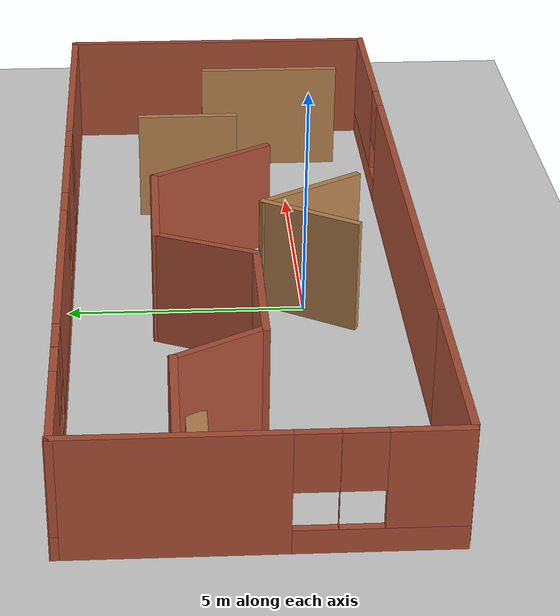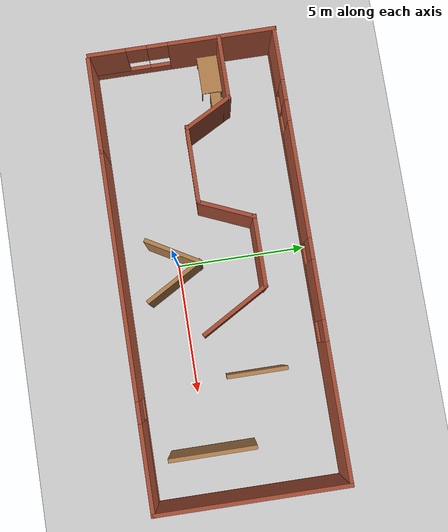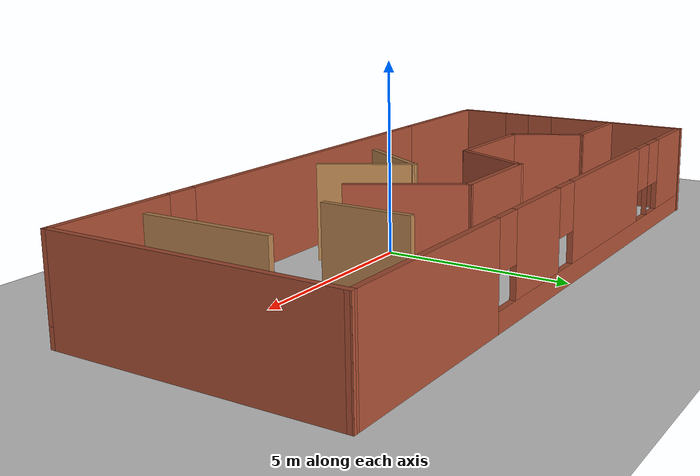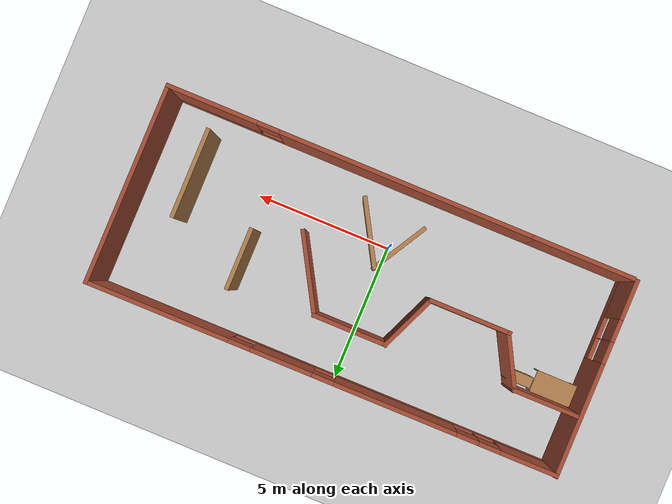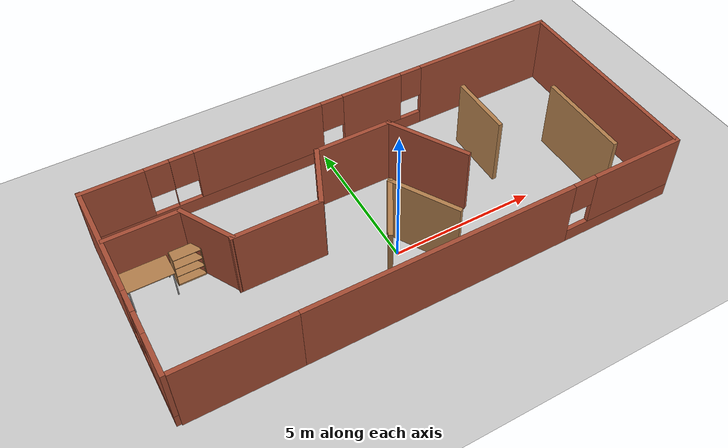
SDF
<sdf version="1.7">
 <world name="default">
  <light name="sun" type="directional">
   <pose>0 0 10 0 -0 0</pose>
   <diffuse>0.8 0.8 0.8 1</diffuse>
   <specular>0.2 0.2 0.2 1</specular>
   <attenuation>
    <range>1000</range>
    <constant>0.9</constant>
    <linear>0.01</linear>
    <quadratic>0.001</quadratic>
   </attenuation>
   <direction>-0.5 0.1 -0.9</direction>
   <spot><inner_angle>0</inner_angle><outer_angle>0</outer_angle><falloff>0</falloff></spot>
  </light>
  <model name="ground_plane">
   <static>1</static>
   <link name="link">
    <collision name="collision">
     <geometry><plane><normal>0 0 1</normal><size>100 100</size></plane></geometry>
     <surface>
      <contact><collide_bitmask>65535</collide_bitmask></contact>
      <friction><ode><mu>100</mu><mu2>50</mu2></ode></friction>
     </surface>
    </collision>
    <visual name="visual">
     <cast_shadows>0</cast_shadows>
     <geometry><plane><normal>0 0 1</normal><size>100 100</size></plane></geometry>
     <material>
      <script><uri>file://media/materials/scripts/gazebo.material</uri><name>Gazebo/Grey</name></script>
     </material>
    </visual>
   </link>
  </model>
  <gravity>0 0 -9.8</gravity>
  <magnetic_field>6e-06 2.3e-05 -4.2e-05</magnetic_field>
  <atmosphere type="adiabatic"/>
  <physics type="ode">
   <max_step_size>0.001</max_step_size>
   <real_time_factor>1</real_time_factor>
   <real_time_update_rate>1000</real_time_update_rate>
  </physics>
  <scene><ambient>0.4 0.4 0.4 1</ambient><background>0.7 0.7 0.7 1</background><shadows>1</shadows></scene>
  <spherical_coordinates>
   <surface_model>EARTH_WGS84</surface_model>
   <latitude_deg>0</latitude_deg>
   <longitude_deg>0</longitude_deg>
   <elevation>0</elevation>
   <heading_deg>0</heading_deg>
  </spherical_coordinates>
  <model name="map3">
   <pose>0.421785 1.42963 0 0 -0 0</pose>
   <link name="Wall_10">
    <collision name="Wall_10_Collision">
     <geometry><box><size>2.07581 0.15 2.5</size></box></geometry>
     <pose>0 0 1.25 0 -0 0</pose>
    </collision>
    <visual name="Wall_10_Visual">
     <pose>0 0 1.25 0 -0 0</pose>
     <geometry><box><size>2.07581 0.15 2.5</size></box></geometry>
     <material>
      <script><uri>file://media/materials/scripts/gazebo.material</uri><name>Gazebo/Bricks</name></script>
      <ambient>1 1 1 1</ambient>
     </material>
     <meta><layer>0</layer></meta>
    </visual>
    <pose>-5.69652 0.581731 0 0 -0 -1.07461</pose>
   </link>
   <link name="Wall_11">
    <collision name="Wall_11_Collision">
     <geometry><box><size>3 0.15 2.5</size></box></geometry>
     <pose>0 0 1.25 0 -0 0</pose>
    </collision>
    <visual name="Wall_11_Visual">
     <pose>0 0 1.25 0 -0 0</pose>
     <geometry><box><size>3 0.15 2.5</size></box></geometry>
     <material>
      <script><uri>file://media/materials/scripts/gazebo.material</uri><name>Gazebo/Bricks</name></script>
      <ambient>1 1 1 1</ambient>
     </material>
     <meta><layer>0</layer></meta>
    </visual>
    <pose>-3.84286 -0.284891 0 0 -0 0</pose>
   </link>
   <link name="Wall_12">
    <collision name="Wall_12_Collision">
     <geometry><box><size>2.26463 0.15 2.5</size></box></geometry>
     <pose>0 0 1.25 0 -0 0</pose>
    </collision>
    <visual name="Wall_12_Visual">
     <pose>0 0 1.25 0 -0 0</pose>
     <geometry><box><size>2.26463 0.15 2.5</size></box></geometry>
     <material>
      <script><uri>file://media/materials/scripts/gazebo.material</uri><name>Gazebo/Bricks</name></script>
      <ambient>1 1 1 1</ambient>
     </material>
     <meta><layer>0</layer></meta>
    </visual>
    <pose>-1.97152 0.706731 0 0 -0 1.16581</pose>
   </link>
   <link name="Wall_13">
    <collision name="Wall_13_Collision">
     <geometry><box><size>2.75 0.15 2.5</size></box></geometry>
     <pose>0 0 1.25 0 -0 0</pose>
    </collision>
    <visual name="Wall_13_Visual">
     <pose>0 0 1.25 0 -0 0</pose>
     <geometry><box><size>2.75 0.15 2.5</size></box></geometry>
     <material>
      <script><uri>file://media/materials/scripts/gazebo.material</uri><name>Gazebo/Bricks</name></script>
      <ambient>1 1 1 1</ambient>
     </material>
     <meta><layer>0</layer></meta>
    </visual>
    <pose>-0.254932 1.67851 0 0 -0 0</pose>
   </link>
   <link name="Wall_14">
    <collision name="Wall_14_Collision">
     <geometry><box><size>3 0.15 2.5</size></box></geometry>
     <pose>0 0 1.25 0 -0 0</pose>
    </collision>
    <visual name="Wall_14_Visual">
     <pose>0 0 1.25 0 -0 0</pose>
     <geometry><box><size>3 0.15 2.5</size></box></geometry>
     <material>
      <script><uri>file://media/materials/scripts/gazebo.material</uri><name>Gazebo/Bricks</name></script>
      <ambient>1 1 1 1</ambient>
     </material>
     <meta><layer>0</layer></meta>
    </visual>
    <pose>1.75757 0.444429 0 0 -0 -1.0472</pose>
   </link>
   <link name="Wall_16">
    <collision name="Wall_16_Collision">
     <geometry><box><size>3.75 0.15 2.5</size></box></geometry>
     <pose>0 0 1.25 0 -0 0</pose>
    </collision>
    <visual name="Wall_16_Visual">
     <pose>0 0 1.25 0 -0 0</pose>
     <geometry><box><size>3.75 0.15 2.5</size></box></geometry>
     <material>
      <script><uri>file://media/materials/scripts/gazebo.material</uri><name>Gazebo/Bricks</name></script>
      <ambient>1 1 1 1</ambient>
     </material>
     <meta><layer>0</layer></meta>
    </visual>
    <pose>-6.61312 -3.57791 0 0 -0 3.14159</pose>
   </link>
   <link name="Wall_18">
    <collision name="Wall_18_Collision">
     <geometry><box><size>2.5 0.15 2.5</size></box></geometry>
     <pose>0 0 1.25 0 -0 0</pose>
    </collision>
    <visual name="Wall_18_Visual">
     <pose>0 0 1.25 0 -0 0</pose>
     <geometry><box><size>2.5 0.15 2.5</size></box></geometry>
     <material>
      <script><uri>file://media/materials/scripts/gazebo.material</uri><name>Gazebo/Wood</name></script>
      <ambient>1 1 1 1</ambient>
     </material>
     <meta><layer>0</layer></meta>
    </visual>
    <pose>0.375797 -1.60598 0 0 -0 2.0944</pose>
   </link>
   <link name="Wall_19">
    <collision name="Wall_19_Collision">
     <geometry><box><size>2.25 0.15 2.5</size></box></geometry>
     <pose>0 0 1.25 0 -0 0</pose>
    </collision>
    <visual name="Wall_19_Visual">
     <pose>0 0 1.25 0 -0 0</pose>
     <geometry><box><size>2.25 0.15 2.5</size></box></geometry>
     <material>
      <script><uri>file://media/materials/scripts/gazebo.material</uri><name>Gazebo/Wood</name></script>
      <ambient>1 1 1 1</ambient>
     </material>
     <meta><layer>0</layer></meta>
    </visual>
    <pose>-0.736703 -1.49772 0 0 -0 -2.0944</pose>
   </link>
   <link name="Wall_2">
    <pose>1.86188 -3.57791 0 0 -0 0</pose>
    <visual name="Wall_2_Visual_0">
     <pose>-2.06534 0 1.25 0 -0 0</pose>
     <geometry><box><size>9.36932 0.15 2.5</size></box></geometry>
     <material>
      <script><uri>file://media/materials/scripts/gazebo.material</uri><name>Gazebo/Bricks</name></script>
      <ambient>1 1 1 1</ambient>
     </material>
     <meta><layer>0</layer></meta>
    </visual>
    <collision name="Wall_2_Collision_0">
     <geometry><box><size>9.36932 0.15 2.5</size></box></geometry>
     <pose>-2.06534 0 1.25 0 -0 0</pose>
    </collision>
    <visual name="Wall_2_Visual_1">
     <pose>4.68466 0 0.25 0 -0 0</pose>
     <geometry><box><size>4.13068 0.15 0.5</size></box></geometry>
     <material>
      <script><uri>file://media/materials/scripts/gazebo.material</uri><name>Gazebo/Bricks</name></script>
      <ambient>1 1 1 1</ambient>
     </material>
     <meta><layer>0</layer></meta>
    </visual>
    <collision name="Wall_2_Collision_1">
     <geometry><box><size>4.13068 0.15 0.5</size></box></geometry>
     <pose>4.68466 0 0.25 0 -0 0</pose>
    </collision>
    <visual name="Wall_2_Visual_2">
     <pose>5.08466 0 1.5 0 -0 0</pose>
     <geometry><box><size>3.33068 0.15 2</size></box></geometry>
     <material>
      <script><uri>file://media/materials/scripts/gazebo.material</uri><name>Gazebo/Bricks</name></script>
      <ambient>1 1 1 1</ambient>
     </material>
     <meta><layer>0</layer></meta>
    </visual>
    <collision name="Wall_2_Collision_2">
     <geometry><box><size>3.33068 0.15 2</size></box></geometry>
     <pose>5.08466 0 1.5 0 -0 0</pose>
    </collision>
    <visual name="Wall_2_Visual_3">
     <pose>3.01932 0 1.9 0 -0 0</pose>
     <geometry><box><size>0.8 0.15 1.2</size></box></geometry>
     <material>
      <script><uri>file://media/materials/scripts/gazebo.material</uri><name>Gazebo/Bricks</name></script>
      <ambient>1 1 1 1</ambient>
     </material>
     <meta><layer>0</layer></meta>
    </visual>
    <collision name="Wall_2_Collision_3">
     <geometry><box><size>0.8 0.15 1.2</size></box></geometry>
     <pose>3.01932 0 1.9 0 -0 0</pose>
    </collision>
   </link>
   <link name="Wall_21">
    <collision name="Wall_21_Collision">
     <geometry><box><size>2.25 0.15 2.5</size></box></geometry>
     <pose>0 0 1.25 0 -0 0</pose>
    </collision>
    <visual name="Wall_21_Visual">
     <pose>0 0 1.25 0 -0 0</pose>
     <geometry><box><size>2.25 0.15 2.5</size></box></geometry>
     <material>
      <script><uri>file://media/materials/scripts/gazebo.material</uri><name>Gazebo/Wood</name></script>
      <ambient>1 1 1 1</ambient>
     </material>
     <meta><layer>0</layer></meta>
    </visual>
    <pose>4.10754 0.889067 0 0 -0 -1.5708</pose>
   </link>
   <link name="Wall_23">
    <collision name="Wall_23_Collision">
     <geometry><box><size>3.25 0.15 2.5</size></box></geometry>
     <pose>0 0 1.25 0 -0 0</pose>
    </collision>
    <visual name="Wall_23_Visual">
     <pose>0 0 1.25 0 -0 0</pose>
     <geometry><box><size>3.25 0.15 2.5</size></box></geometry>
     <material>
      <script><uri>file://media/materials/scripts/gazebo.material</uri><name>Gazebo/Wood</name></script>
      <ambient>1 1 1 1</ambient>
     </material>
     <meta><layer>0</layer></meta>
    </visual>
    <pose>6.72609 -1.14834 0 0 -0 -1.5708</pose>
   </link>
   <link name="Wall_3">
    <collision name="Wall_3_Collision">
     <geometry><box><size>7.25312 0.15 2.5</size></box></geometry>
     <pose>0 0 1.25 0 -0 0</pose>
    </collision>
    <visual name="Wall_3_Visual">
     <pose>0 0 1.25 0 -0 0</pose>
     <geometry><box><size>7.25312 0.15 2.5</size></box></geometry>
     <material>
      <script><uri>file://media/materials/scripts/gazebo.material</uri><name>Gazebo/Bricks</name></script>
      <ambient>1 1 1 1</ambient>
     </material>
     <meta><layer>0</layer></meta>
    </visual>
    <pose>8.55 0.026097 0 0 -0 1.5671</pose>
   </link>
   <link name="Wall_5">
    <pose>-0 3.55923 0 0 -0 -3.13944</pose>
    <visual name="Wall_5_Visual_0">
     <pose>-6.01745 0 1.25 0 -0 0</pose>
     <geometry><box><size>5.24183 0.15 2.5</size></box></geometry>
     <material>
      <script><uri>file://media/materials/scripts/gazebo.material</uri><name>Gazebo/Bricks</name></script>
      <ambient>1 1 1 1</ambient>
     </material>
     <meta><layer>0</layer></meta>
    </visual>
    <collision name="Wall_5_Collision_0">
     <geometry><box><size>5.24183 0.15 2.5</size></box></geometry>
     <pose>-6.01745 0 1.25 0 -0 0</pose>
    </collision>
    <visual name="Wall_5_Visual_1">
     <pose>2.62091 0 0.25 0 -0 0</pose>
     <geometry><box><size>12.0349 0.15 0.5</size></box></geometry>
     <material>
      <script><uri>file://media/materials/scripts/gazebo.material</uri><name>Gazebo/Bricks</name></script>
      <ambient>1 1 1 1</ambient>
     </material>
     <meta><layer>0</layer></meta>
    </visual>
    <collision name="Wall_5_Collision_1">
     <geometry><box><size>12.0349 0.15 0.5</size></box></geometry>
     <pose>2.62091 0 0.25 0 -0 0</pose>
    </collision>
    <visual name="Wall_5_Visual_2">
     <pose>-1.47403 0 1.5 0 -0 0</pose>
     <geometry><box><size>2.24503 0.15 2</size></box></geometry>
     <material>
      <script><uri>file://media/materials/scripts/gazebo.material</uri><name>Gazebo/Bricks</name></script>
      <ambient>1 1 1 1</ambient>
     </material>
     <meta><layer>0</layer></meta>
    </visual>
    <collision name="Wall_5_Collision_2">
     <geometry><box><size>2.24503 0.15 2</size></box></geometry>
     <pose>-1.47403 0 1.5 0 -0 0</pose>
    </collision>
    <visual name="Wall_5_Visual_3">
     <pose>2.68684 0 1.5 0 -0 0</pose>
     <geometry><box><size>4.4767 0.15 2</size></box></geometry>
     <material>
      <script><uri>file://media/materials/scripts/gazebo.material</uri><name>Gazebo/Bricks</name></script>
      <ambient>1 1 1 1</ambient>
     </material>
     <meta><layer>0</layer></meta>
    </visual>
    <collision name="Wall_5_Collision_3">
     <geometry><box><size>4.4767 0.15 2</size></box></geometry>
     <pose>2.68684 0 1.5 0 -0 0</pose>
    </collision>
    <visual name="Wall_5_Visual_4">
     <pose>5.72691 0 1.5 0 -0 0</pose>
     <geometry><box><size>0.00346 0.15 2</size></box></geometry>
     <material>
      <script><uri>file://media/materials/scripts/gazebo.material</uri><name>Gazebo/Bricks</name></script>
      <ambient>1 1 1 1</ambient>
     </material>
     <meta><layer>0</layer></meta>
    </visual>
    <collision name="Wall_5_Collision_4">
     <geometry><box><size>0.00346 0.15 2</size></box></geometry>
     <pose>5.72691 0 1.5 0 -0 0</pose>
    </collision>
    <visual name="Wall_5_Visual_5">
     <pose>7.58351 0 1.5 0 -0 0</pose>
     <geometry><box><size>2.10972 0.15 2</size></box></geometry>
     <material>
      <script><uri>file://media/materials/scripts/gazebo.material</uri><name>Gazebo/Bricks</name></script>
      <ambient>1 1 1 1</ambient>
     </material>
     <meta><layer>0</layer></meta>
    </visual>
    <collision name="Wall_5_Collision_5">
     <geometry><box><size>2.10972 0.15 2</size></box></geometry>
     <pose>7.58351 0 1.5 0 -0 0</pose>
    </collision>
    <visual name="Wall_5_Visual_6">
     <pose>-2.99654 0 1.9 0 -0 0</pose>
     <geometry><box><size>0.8 0.15 1.2</size></box></geometry>
     <material>
      <script><uri>file://media/materials/scripts/gazebo.material</uri><name>Gazebo/Bricks</name></script>
      <ambient>1 1 1 1</ambient>
     </material>
     <meta><layer>0</layer></meta>
    </visual>
    <collision name="Wall_5_Collision_6">
     <geometry><box><size>0.8 0.15 1.2</size></box></geometry>
     <pose>-2.99654 0 1.9 0 -0 0</pose>
    </collision>
    <visual name="Wall_5_Visual_7">
     <pose>0.048486 0 1.9 0 -0 0</pose>
     <geometry><box><size>0.8 0.15 1.2</size></box></geometry>
     <material>
      <script><uri>file://media/materials/scripts/gazebo.material</uri><name>Gazebo/Bricks</name></script>
      <ambient>1 1 1 1</ambient>
     </material>
     <meta><layer>0</layer></meta>
    </visual>
    <collision name="Wall_5_Collision_7">
     <geometry><box><size>0.8 0.15 1.2</size></box></geometry>
     <pose>0.048486 0 1.9 0 -0 0</pose>
    </collision>
    <visual name="Wall_5_Visual_8">
     <pose>5.32519 0 1.9 0 -0 0</pose>
     <geometry><box><size>0.8 0.15 1.2</size></box></geometry>
     <material>
      <script><uri>file://media/materials/scripts/gazebo.material</uri><name>Gazebo/Bricks</name></script>
      <ambient>1 1 1 1</ambient>
     </material>
     <meta><layer>0</layer></meta>
    </visual>
    <collision name="Wall_5_Collision_8">
     <geometry><box><size>0.8 0.15 1.2</size></box></geometry>
     <pose>5.32519 0 1.9 0 -0 0</pose>
    </collision>
    <visual name="Wall_5_Visual_9">
     <pose>6.12864 0 1.9 0 -0 0</pose>
     <geometry><box><size>0.8 0.15 1.2</size></box></geometry>
     <material>
      <script><uri>file://media/materials/scripts/gazebo.material</uri><name>Gazebo/Bricks</name></script>
      <ambient>1 1 1 1</ambient>
     </material>
     <meta><layer>0</layer></meta>
    </visual>
    <collision name="Wall_5_Collision_9">
     <geometry><box><size>0.8 0.15 1.2</size></box></geometry>
     <pose>6.12864 0 1.9 0 -0 0</pose>
    </collision>
   </link>
   <link name="Wall_6">
    <pose>-8.56312 0.010669 0 0 -0 -1.5708</pose>
    <visual name="Wall_6_Visual_0">
     <pose>-1.54344 0 1.25 0 -0 0</pose>
     <geometry><box><size>4.16312 0.15 2.5</size></box></geometry>
     <material>
      <script><uri>file://media/materials/scripts/gazebo.material</uri><name>Gazebo/Bricks</name></script>
      <ambient>1 1 1 1</ambient>
     </material>
     <meta><layer>0</layer></meta>
    </visual>
    <collision name="Wall_6_Collision_0">
     <geometry><box><size>4.16312 0.15 2.5</size></box></geometry>
     <pose>-1.54344 0 1.25 0 -0 0</pose>
    </collision>
    <visual name="Wall_6_Visual_1">
     <pose>2.08156 0 0.25 0 -0 0</pose>
     <geometry><box><size>3.08688 0.15 0.5</size></box></geometry>
     <material>
      <script><uri>file://media/materials/scripts/gazebo.material</uri><name>Gazebo/Bricks</name></script>
      <ambient>1 1 1 1</ambient>
     </material>
     <meta><layer>0</layer></meta>
    </visual>
    <collision name="Wall_6_Collision_1">
     <geometry><box><size>3.08688 0.15 0.5</size></box></geometry>
     <pose>2.08156 0 0.25 0 -0 0</pose>
    </collision>
    <visual name="Wall_6_Visual_2">
     <pose>1.33983 0 1.5 0 -0 0</pose>
     <geometry><box><size>0.003419 0.15 2</size></box></geometry>
     <material>
      <script><uri>file://media/materials/scripts/gazebo.material</uri><name>Gazebo/Bricks</name></script>
      <ambient>1 1 1 1</ambient>
     </material>
     <meta><layer>0</layer></meta>
    </visual>
    <collision name="Wall_6_Collision_2">
     <geometry><box><size>0.003419 0.15 2</size></box></geometry>
     <pose>1.33983 0 1.5 0 -0 0</pose>
    </collision>
    <visual name="Wall_6_Visual_3">
     <pose>2.88327 0 1.5 0 -0 0</pose>
     <geometry><box><size>1.48346 0.15 2</size></box></geometry>
     <material>
      <script><uri>file://media/materials/scripts/gazebo.material</uri><name>Gazebo/Bricks</name></script>
      <ambient>1 1 1 1</ambient>
     </material>
     <meta><layer>0</layer></meta>
    </visual>
    <collision name="Wall_6_Collision_3">
     <geometry><box><size>1.48346 0.15 2</size></box></geometry>
     <pose>2.88327 0 1.5 0 -0 0</pose>
    </collision>
    <visual name="Wall_6_Visual_4">
     <pose>0.938121 0 1.9 0 -0 0</pose>
     <geometry><box><size>0.8 0.15 1.2</size></box></geometry>
     <material>
      <script><uri>file://media/materials/scripts/gazebo.material</uri><name>Gazebo/Bricks</name></script>
      <ambient>1 1 1 1</ambient>
     </material>
     <meta><layer>0</layer></meta>
    </visual>
    <collision name="Wall_6_Collision_4">
     <geometry><box><size>0.8 0.15 1.2</size></box></geometry>
     <pose>0.938121 0 1.9 0 -0 0</pose>
    </collision>
    <visual name="Wall_6_Visual_5">
     <pose>1.74154 0 1.9 0 -0 0</pose>
     <geometry><box><size>0.8 0.15 1.2</size></box></geometry>
     <material>
      <script><uri>file://media/materials/scripts/gazebo.material</uri><name>Gazebo/Bricks</name></script>
      <ambient>1 1 1 1</ambient>
     </material>
     <meta><layer>0</layer></meta>
    </visual>
    <collision name="Wall_6_Collision_5">
     <geometry><box><size>0.8 0.15 1.2</size></box></geometry>
     <pose>1.74154 0 1.9 0 -0 0</pose>
    </collision>
   </link>
   <link name="Wall_9">
    <collision name="Wall_9_Collision">
     <geometry><box><size>2.5 0.15 2.5</size></box></geometry>
     <pose>0 0 1.25 0 -0 0</pose>
    </collision>
    <visual name="Wall_9_Visual">
     <pose>0 0 1.25 0 -0 0</pose>
     <geometry><box><size>2.5 0.15 2.5</size></box></geometry>
     <material>
      <script><uri>file://media/materials/scripts/gazebo.material</uri><name>Gazebo/Bricks</name></script>
      <ambient>1 1 1 1</ambient>
     </material>
     <meta><layer>0</layer></meta>
    </visual>
    <pose>-7.32993 1.42851 0 0 -0 0</pose>
   </link>
   <static>1</static>
  </model>
  <model name="table">
   <static>1</static>
   <link name="link">
    <collision name="surface">
     <pose>0 0 1 0 -0 0</pose>
     <geometry><box><size>1.5 0.8 0.03</size></box></geometry>
     <surface><friction><ode><mu>0.6</mu><mu2>0.6</mu2></ode></friction></surface>
    </collision>
    <visual name="visual1">
     <pose>0 0 1 0 -0 0</pose>
     <geometry><box><size>1.5 0.8 0.03</size></box></geometry>
     <material>
      <script><uri>file://media/materials/scripts/gazebo.material</uri><name>Gazebo/Wood</name></script>
     </material>
    </visual>
    <collision name="front_left_leg">
     <pose>0.68 0.38 0.5 0 -0 0</pose>
     <geometry><cylinder><radius>0.02</radius><length>1</length></cylinder></geometry>
    </collision>
    <visual name="front_left_leg">
     <pose>0.68 0.38 0.5 0 -0 0</pose>
     <geometry><cylinder><radius>0.02</radius><length>1</length></cylinder></geometry>
     <material>
      <script><uri>file://media/materials/scripts/gazebo.material</uri><name>Gazebo/Grey</name></script>
     </material>
    </visual>
    <collision name="front_right_leg">
     <pose>0.68 -0.38 0.5 0 -0 0</pose>
     <geometry><cylinder><radius>0.02</radius><length>1</length></cylinder></geometry>
    </collision>
    <visual name="front_right_leg">
     <pose>0.68 -0.38 0.5 0 -0 0</pose>
     <geometry><cylinder><radius>0.02</radius><length>1</length></cylinder></geometry>
     <material>
      <script><uri>file://media/materials/scripts/gazebo.material</uri><name>Gazebo/Grey</name></script>
     </material>
    </visual>
    <collision name="back_right_leg">
     <pose>-0.68 -0.38 0.5 0 -0 0</pose>
     <geometry><cylinder><radius>0.02</radius><length>1</length></cylinder></geometry>
    </collision>
    <visual name="back_right_leg">
     <pose>-0.68 -0.38 0.5 0 -0 0</pose>
     <geometry><cylinder><radius>0.02</radius><length>1</length></cylinder></geometry>
     <material>
      <script><uri>file://media/materials/scripts/gazebo.material</uri><name>Gazebo/Grey</name></script>
     </material>
    </visual>
    <collision name="back_left_leg">
     <pose>-0.68 0.38 0.5 0 -0 0</pose>
     <geometry><cylinder><radius>0.02</radius><length>1</length></cylinder></geometry>
    </collision>
    <visual name="back_left_leg">
     <pose>-0.68 0.38 0.5 0 -0 0</pose>
     <geometry><cylinder><radius>0.02</radius><length>1</length></cylinder></geometry>
     <material>
      <script><uri>file://media/materials/scripts/gazebo.material</uri><name>Gazebo/Grey</name></script>
     </material>
    </visual>
   </link>
   <pose>-7.24618 2.3527 0 0 -0 0</pose>
  </model>
  <model name="bookshelf">
   <static>1</static>
   <link name="link">
    <inertial><mass>1</mass></inertial>
    <collision name="back">
     <pose>0 0.005 0.6 0 -0 0</pose>
     <geometry><box><size>0.9 0.01 1.2</size></box></geometry>
    </collision>
    <visual name="visual1">
     <pose>0 0.005 0.6 0 -0 0</pose>
     <geometry><box><size>0.9 0.01 1.2</size></box></geometry>
     <material>
      <script><uri>file://media/materials/scripts/gazebo.material</uri><name>Gazebo/Wood</name></script>
     </material>
    </visual>
    <collision name="left_side">
     <pose>0.45 -0.195 0.6 0 -0 0</pose>
     <geometry><box><size>0.02 0.4 1.2</size></box></geometry>
    </collision>
    <visual name="visual2">
     <pose>0.45 -0.195 0.6 0 -0 0</pose>
     <geometry><box><size>0.02 0.4 1.2</size></box></geometry>
     <material>
      <script><uri>file://media/materials/scripts/gazebo.material</uri><name>Gazebo/Wood</name></script>
     </material>
    </visual>
    <collision name="right_side">
     <pose>-0.45 -0.195 0.6 0 -0 0</pose>
     <geometry><box><size>0.02 0.4 1.2</size></box></geometry>
    </collision>
    <visual name="visual3">
     <pose>-0.45 -0.195 0.6 0 -0 0</pose>
     <geometry><box><size>0.02 0.4 1.2</size></box></geometry>
     <material>
      <script><uri>file://media/materials/scripts/gazebo.material</uri><name>Gazebo/Wood</name></script>
     </material>
    </visual>
    <collision name="bottom">
     <pose>0 -0.195 0.03 0 -0 0</pose>
     <geometry><box><size>0.88 0.4 0.06</size></box></geometry>
    </collision>
    <visual name="visual4">
     <pose>0 -0.195 0.03 0 -0 0</pose>
     <geometry><box><size>0.88 0.4 0.06</size></box></geometry>
     <material>
      <script><uri>file://media/materials/scripts/gazebo.material</uri><name>Gazebo/Wood</name></script>
     </material>
    </visual>
    <collision name="top">
     <pose>0 -0.195 1.19 0 -0 0</pose>
     <geometry><box><size>0.88 0.4 0.02</size></box></geometry>
    </collision>
    <visual name="visual5">
     <pose>0 -0.195 1.19 0 -0 0</pose>
     <geometry><box><size>0.88 0.4 0.02</size></box></geometry>
     <material>
      <script><uri>file://media/materials/scripts/gazebo.material</uri><name>Gazebo/Wood</name></script>
     </material>
    </visual>
    <collision name="low_shelf">
     <pose>0 -0.195 0.43 0 -0 0</pose>
     <geometry><box><size>0.88 0.4 0.02</size></box></geometry>
    </collision>
    <visual name="visual6">
     <pose>0 -0.195 0.43 0 -0 0</pose>
     <geometry><box><size>0.88 0.4 0.02</size></box></geometry>
     <material>
      <script><uri>file://media/materials/scripts/gazebo.material</uri><name>Gazebo/Wood</name></script>
     </material>
    </visual>
    <collision name="high_shelf">
     <pose>0 -0.195 0.8 0 -0 0</pose>
     <geometry><box><size>0.88 0.4 0.02</size></box></geometry>
    </collision>
    <visual name="visual7">
     <pose>0 -0.195 0.8 0 -0 0</pose>
     <geometry><box><size>0.88 0.4 0.02</size></box></geometry>
     <material>
      <script><uri>file://media/materials/scripts/gazebo.material</uri><name>Gazebo/Wood</name></script>
     </material>
    </visual>
   </link>
   <pose>-5.98773 2.65172 0 0 -0 0</pose>
  </model>
 </world>
</sdf>
